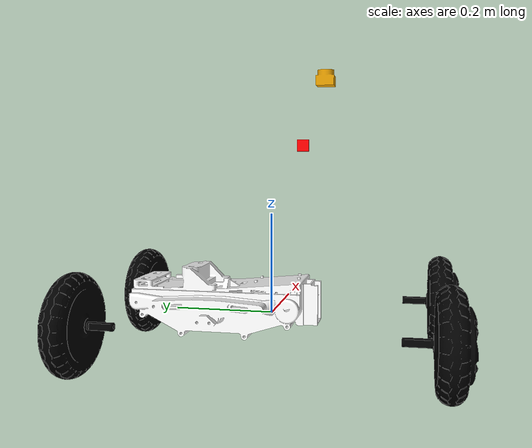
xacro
<?xml version="1.0"?>
<robot xmlns:xacro="http://www.ros.org/wiki/xacro" name="gueladan">

    <xacro:include filename="inertial_macros.xacro"/>
    <xacro:include filename="lidar.xacro" />
    <xacro:include filename="camera.xacro" />

    <material name="blue">
        <color rgba="0 0 0.8 1"/>
    </material>
    <material name="black">
        <color rgba="0 0 0 1"/>
    </material>
    <material name="white">
        <color rgba="1 1 1 1"/>
    </material>

    <link name="base_link"></link>

    <joint name="base_chassis_join" type="fixed">
        <parent link="base_link"/>
        <child link="chassis_link"/>
        <origin rpy="0 0 0" xyz="0 0 0"/>
    </joint>

    <link name="chassis_link">
        <visual>
        <geometry>
            <mesh filename="package://robot_description/meshes/chassis.stl" scale="0.001 0.001 0.001"/>
        </geometry>
        <origin rpy="0 0 1.57" xyz="0 0 0"/>
        <material name="white"/>
        </visual>
        <collision>
            <geometry>
                <box size="0.8 0.6 0.4"/>
            </geometry>
            <origin rpy="0 0 0" xyz="0 0 0.2"/>
        </collision>
        <xacro:inertial_box mass="10" x="0.8" y="0.6" z="0.4">
        <origin rpy="0 0 0" xyz="0 0 0.2"/>
        </xacro:inertial_box>
    </link>

    <link name="back_left_wheel">
        <visual>
            <geometry>
                <mesh filename="package://robot_description/meshes/wheel.stl" scale="0.001 0.001 0.001"/>
            </geometry>
            <origin rpy="0 -1.57 0" xyz="0 0 0"/>
            <material name="black"/>
        </visual>

        <collision>
            <geometry>
                <cylinder length="0.08" radius="0.1"/>
            </geometry>
            <origin rpy="0 0 0" xyz="0 0 0"/>
            <material name="black"/>
        </collision>

        <xacro:inertial_cylinder mass="0.5" length="0.08" radius="0.01">
            <origin xyz="0 0 0" rpy="0 0 0"/>
        </xacro:inertial_cylinder>
    </link>

    <link name="front_left_wheel">
        <visual>
            <geometry>
                <mesh filename="package://robot_description/meshes/wheel.stl" scale="0.001 0.001 0.001"/>
            </geometry>
            <origin rpy="0 -1.57 0" xyz="0 0 0"/>
            <material name="black"/>
        </visual>
        <collision>
            <geometry>
                <cylinder length="0.08" radius="0.1"/>
            </geometry>
            <origin rpy="0 0 0" xyz="0 0 0"/>
            <material name="black"/>
        </collision>
        <xacro:inertial_cylinder mass="0.5" length="0.08" radius="0.01">
            <origin xyz="0 0 0" rpy="0 0 0"/>
        </xacro:inertial_cylinder>
    </link>

    <link name="back_right_wheel">
        <visual>
            <geometry>
                <mesh filename="package://robot_description/meshes/wheel.stl" scale="0.001 0.001 0.001"/>
            </geometry>
            <origin rpy="0 -1.57 0" xyz="0 0 0"/>
            <material name="black"/>
        </visual>
        <collision>
            <geometry>
                <cylinder length="0.08" radius="0.1"/>
            </geometry>
            <origin rpy="0 0 0" xyz="0 0 0"/>
            <material name="black"/>
        </collision>
        <xacro:inertial_cylinder mass="0.5" length="0.08" radius="0.01">
            <origin xyz="0 0 0" rpy="0 0 0"/>
        </xacro:inertial_cylinder>
    </link>

    <link name="front_right_wheel">
        <visual>
            <geometry>
                <mesh filename="package://robot_description/meshes/wheel.stl" scale="0.001 0.001 0.001"/>
            </geometry>
            <origin rpy="0 -1.57 0" xyz="0 0 0"/>
            <material name="black"/>
        </visual>
        <collision>
            <geometry>
            <cylinder length="0.08" radius="0.1"/>
            </geometry>
            <origin rpy="0 0 0" xyz="0 0 0"/>
            <material name="black"/>
        </collision>
        <xacro:inertial_cylinder mass="0.5" length="0.08" radius="0.01">
            <origin xyz="0 0 0" rpy="0 0 0"/>
        </xacro:inertial_cylinder>
    </link>

    <joint name="front_right_wheel_joint" type="continuous">
        <parent link="base_link"/>
        <child link="front_right_wheel"/>
        <origin rpy="1.57 0 0" xyz="0.18 -0.31 0"/>
        <axis xyz="0 0 -1"/>
    </joint>

    <transmission name="front_right_wheel_trans">
      <type>transmission_interface/SimpleTransmission</type>
      <actuator name="front_right_wheel_motor">
        <mechanicalReduction>1</mechanicalReduction>
      </actuator>
      <joint name="front_right_wheel_joint">
        <hardwareInterface>hardware_interface/VelocityJointInterface</hardwareInterface>
      </joint>
    </transmission>

    <joint name="back_right_wheel_joint" type="continuous">
        <parent link="base_link"/>
        <child link="back_right_wheel"/>
        <origin rpy="1.57 0 0" xyz="-0.18 -0.31 0"/>
        <axis xyz="0 0 -1"/>
    </joint>
    <transmission name="back_right_wheel_trans">
      <type>transmission_interface/SimpleTransmission</type>
      <actuator name="back_right_wheel_motor">
        <mechanicalReduction>1</mechanicalReduction>
      </actuator>
      <joint name="back_right_wheel_joint">
        <hardwareInterface>hardware_interface/VelocityJointInterface</hardwareInterface>
      </joint>
    </transmission>

    <joint name="front_left_wheel_joint" type="continuous">
        <parent link="base_link"/>
        <child link="front_left_wheel"/>
        <origin rpy="-1.57 0 0" xyz="0.18 0.31 0"/>
        <axis xyz="0 0 1"/>
    </joint>
    <transmission name="front_left_wheel_trans">
      <type>transmission_interface/SimpleTransmission</type>
      <actuator name="front_left_wheel_motor">
        <mechanicalReduction>1</mechanicalReduction>
      </actuator>
      <joint name="front_left_wheel_joint">
        <hardwareInterface>hardware_interface/VelocityJointInterface</hardwareInterface>
      </joint>
    </transmission>

    <joint name="back_left_wheel_joint" type="continuous">
        <parent link="base_link"/>
        <child link="back_left_wheel"/>
        <origin rpy="-1.57 0 0" xyz="-0.18 0.31 0"/>
        <axis xyz="0 0 1"/>
    </joint>
    <transmission name="back_left_wheel_trans">
      <type>transmission_interface/SimpleTransmission</type>
      <actuator name="back_left_wheel_motor">
        <mechanicalReduction>1</mechanicalReduction>
      </actuator>
      <joint name="back_left_wheel_joint">
        <hardwareInterface>hardware_interface/VelocityJointInterface</hardwareInterface>
      </joint>
    </transmission>

    <gazebo reference="back_right_wheel">
        <mu1 value="200.0"/>
        <mu2 value="100.0"/>
        <kp value="10000000.0" />
        <kd value="1.0" />
        <material>Gazebo/Grey</material>
    </gazebo>
    <gazebo reference="front_right_wheel">
        <mu1 value="200.0"/>
        <mu2 value="100.0"/>
        <kp value="10000000.0" />
        <kd value="1.0" />
        <material>Gazebo/Grey</material>
    </gazebo>
    <gazebo reference="front_left_wheel">
        <mu1 value="200.0"/>
        <mu2 value="100.0"/>
        <kp value="10000000.0" />
        <kd value="1.0" />
        <material>Gazebo/Grey</material>
    </gazebo>
    <gazebo reference="back_left_wheel">
        <mu1 value="200.0"/>
        <mu2 value="100.0"/>
        <kp value="10000000.0" />
        <kd value="1.0" />
        <material>Gazebo/Grey</material>
    </gazebo>

    <gazebo>
		<plugin name="gazebo_ros_control" filename="libgazebo_ros_control.so">
		  <robotNamespace>/</robotNamespace>
		</plugin>
    </gazebo>
</robot>

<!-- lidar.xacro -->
<robot xmlns:xacro="http://www.ros.org/wiki/xacro" >
    <xacro:include filename="inertial_macros.xacro"/>

    <joint name="laser_joint" type="fixed">
        <parent link="base_link"/>
        <child link="laser_frame"/>
        <origin xyz="0.35 0 0.425" rpy="0 0 0"/>
    </joint>

    <link name="laser_frame">
        <visual>
            <geometry>
                <mesh filename="package://robot_description/meshes/lidar.stl" scale="0.001 0.001 0.001"/>
            </geometry>
            <origin xyz="0 0 -0.04" rpy="0 0 3.14"/>
        </visual>
        <collision>
            <geometry>
                <cylinder radius="0.05" length="0.04"/>
            </geometry>
            <origin xyz="0 0 -0.01" rpy="0 0 0"/>
        </collision>
        <xacro:inertial_cylinder mass="0.1" length="0.04" radius="0.05">
            <origin xyz="0 0 -0.01" rpy="0 0 0"/>
        </xacro:inertial_cylinder>
    </link>

    <material name="red">
        <color rgba="1 0 0 1"/>
    </material>

    <gazebo reference="laser_frame">
        <sensor name="laser" type="ray">
            <pose> 0 0 0 0 0 0 </pose>
            <visualize>true</visualize>
            <update_rate>10</update_rate>
            <ray>
                <scan>
                    <horizontal>
                        <samples>360</samples>
                        <min_angle>-3.14</min_angle>
                        <max_angle>3.14</max_angle>
                    </horizontal>
                </scan>
                <range>
                    <min>0.3</min>
                    <max>12</max>
                </range>
            </ray>
            <plugin name="laser_controller" filename="libgazebo_ros_ray_sensor.so">
                <ros>
                    <argument>~/out:=scan</argument>
                </ros>
                <output_type>sensor_msgs/LaserScan</output_type>
                <frame_name>laser_frame</frame_name>
            </plugin>
        </sensor>
    </gazebo>

</robot>

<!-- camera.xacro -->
<robot xmlns:xacro="http://www.ros.org/wiki/xacro" >

    <joint name="camera_joint" type="fixed">
        <parent link="base_link"/>
        <child link="camera_link"/>
        <origin xyz="0.41 0 0.35" rpy="0 0 0"/>
    </joint>

    <link name="camera_link">
        <visual>
            <geometry>
                <box size="0.010 0.03 0.03"/>
            </geometry>
            <material name="red"/>
        </visual>
    </link>

    <joint name="camera_optical_joint" type="fixed">
        <parent link="camera_link"/>
        <child link="camera_link_optical"/>
        <origin xyz="0 0 0" rpy="-1.57 0 -1.57"/>
    </joint>

    <link name="camera_link_optical"></link>

    <gazebo reference="camera_link">
        <material>Gazebo/Red</material>

        <sensor name="camera" type="camera">
            <pose> 0 0 0 0 0 0 </pose>
            <visualize>true</visualize>
            <update_rate>10</update_rate>
            <camera>
                <horizontal_fov>1.089</horizontal_fov>
                <image>
                    <format>R8G8B8</format>
                    <width>640</width>
                    <height>480</height>
                </image>
                <clip>
                    <near>0.05</near>
                    <far>8.0</far>
                </clip>
            </camera>
            <plugin name="camera_controller" filename="libgazebo_ros_camera.so">
                <frame_name>camera_link_optical</frame_name>
            </plugin>
        </sensor>
    </gazebo>

</robot>
